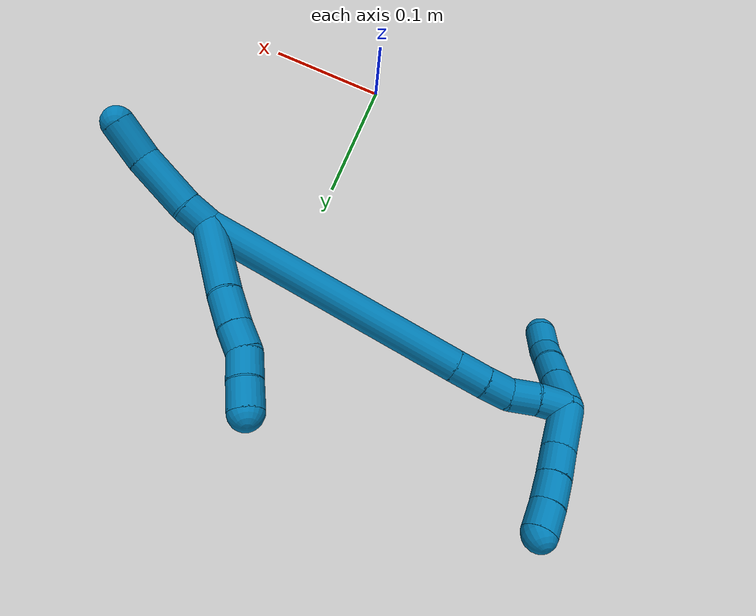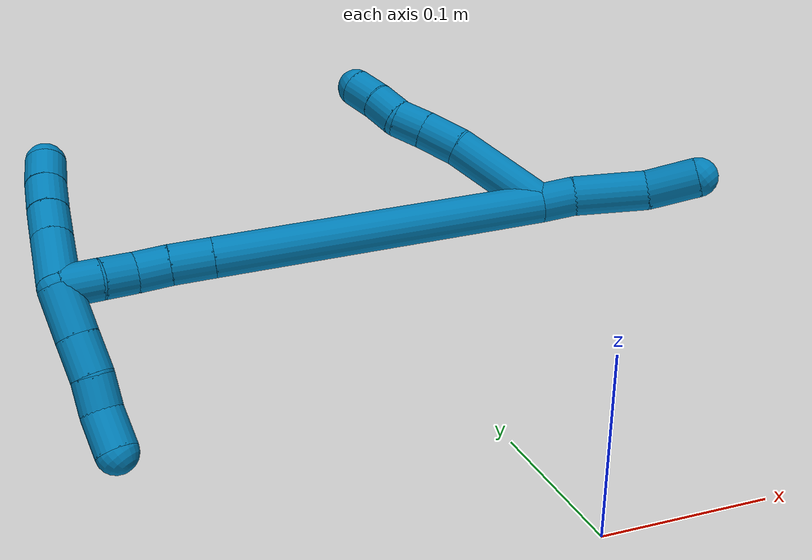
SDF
<sdf version="1.7">
 <world name="default">
  <model name="9">
   <static>0</static>
   <link name="9">
    <collision name="collision-cylinder-e_1_2_8">
     <pose>-0.000675 0.00747 0.031208 -0.234941 -0.02104 0.002483</pose>
     <geometry><cylinder><radius>0.0125</radius><length>0.064194</length></cylinder></geometry>
     <surface>
      <friction><ode><mu>1.16</mu><mu2>1.16</mu2><slip1>0</slip1><slip2>0</slip2></ode></friction>
      <contact><ode><kp>1e+06</kp><kd>1</kd><max_vel>0</max_vel><min_depth>0.001</min_depth></ode></contact>
     </surface>
    </collision>
    <visual name="visual-cylinder-e_1_2_8">
     <pose>-0.000675 0.00747 0.031208 -0.234941 -0.02104 0.002483</pose>
     <geometry><cylinder><radius>0.0125</radius><length>0.064194</length></cylinder></geometry>
     <material><ambient>0 0.490196 0.709804 1</ambient></material>
    </visual>
    <collision name="collision-cylinder-e_2_8_9">
     <pose>-0.001644 0.019581 0.074373 -0.370231 -0.022881 0.004285</pose>
     <geometry><cylinder><radius>0.0125</radius><length>0.025659</length></cylinder></geometry>
     <surface>
      <friction><ode><mu>1.16</mu><mu2>1.16</mu2><slip1>0</slip1><slip2>0</slip2></ode></friction>
      <contact><ode><kp>1e+06</kp><kd>1</kd><max_vel>0</max_vel><min_depth>0.001</min_depth></ode></contact>
     </surface>
    </collision>
    <visual name="visual-cylinder-e_2_8_9">
     <pose>-0.001644 0.019581 0.074373 -0.370231 -0.022881 0.004285</pose>
     <geometry><cylinder><radius>0.0125</radius><length>0.025659</length></cylinder></geometry>
     <material><ambient>0 0.490196 0.709804 1</ambient></material>
    </visual>
    <collision name="collision-cylinder-e_3_9_10">
     <pose>-0.002808 0.028211 0.095476 -0.411288 -0.086988 0.018156</pose>
     <geometry><cylinder><radius>0.0125</radius><length>0.020032</length></cylinder></geometry>
     <surface>
      <friction><ode><mu>1.16</mu><mu2>1.16</mu2><slip1>0</slip1><slip2>0</slip2></ode></friction>
      <contact><ode><kp>1e+06</kp><kd>1</kd><max_vel>0</max_vel><min_depth>0.001</min_depth></ode></contact>
     </surface>
    </collision>
    <visual name="visual-cylinder-e_3_9_10">
     <pose>-0.002808 0.028211 0.095476 -0.411288 -0.086988 0.018156</pose>
     <geometry><cylinder><radius>0.0125</radius><length>0.020032</length></cylinder></geometry>
     <material><ambient>0 0.490196 0.709804 1</ambient></material>
    </visual>
    <collision name="collision-cylinder-e_4_10_11">
     <pose>-0.001848 0.034299 0.114241 -0.2148 0.18377 -0.019868</pose>
     <geometry><cylinder><radius>0.0125</radius><length>0.020027</length></cylinder></geometry>
     <surface>
      <friction><ode><mu>1.16</mu><mu2>1.16</mu2><slip1>0</slip1><slip2>0</slip2></ode></friction>
      <contact><ode><kp>1e+06</kp><kd>1</kd><max_vel>0</max_vel><min_depth>0.001</min_depth></ode></contact>
     </surface>
    </collision>
    <visual name="visual-cylinder-e_4_10_11">
     <pose>-0.001848 0.034299 0.114241 -0.2148 0.18377 -0.019868</pose>
     <geometry><cylinder><radius>0.0125</radius><length>0.020027</length></cylinder></geometry>
     <material><ambient>0 0.490196 0.709804 1</ambient></material>
    </visual>
    <collision name="collision-cylinder-e_5_11_6">
     <pose>0.002055 0.03941 0.133215 -0.311565 0.207925 -0.032771</pose>
     <geometry><cylinder><radius>0.0125</radius><length>0.020088</length></cylinder></geometry>
     <surface>
      <friction><ode><mu>1.16</mu><mu2>1.16</mu2><slip1>0</slip1><slip2>0</slip2></ode></friction>
      <contact><ode><kp>1e+06</kp><kd>1</kd><max_vel>0</max_vel><min_depth>0.001</min_depth></ode></contact>
     </surface>
    </collision>
    <visual name="visual-cylinder-e_5_11_6">
     <pose>0.002055 0.03941 0.133215 -0.311565 0.207925 -0.032771</pose>
     <geometry><cylinder><radius>0.0125</radius><length>0.020088</length></cylinder></geometry>
     <material><ambient>0 0.490196 0.709804 1</ambient></material>
    </visual>
    <collision name="collision-cylinder-e_1_2_12">
     <pose>0.004268 -0.008736 -0.005165 2.10477 0.398045 0.679695</pose>
     <geometry><cylinder><radius>0.0125</radius><length>0.02202</length></cylinder></geometry>
     <surface>
      <friction><ode><mu>1.16</mu><mu2>1.16</mu2><slip1>0</slip1><slip2>0</slip2></ode></friction>
      <contact><ode><kp>1e+06</kp><kd>1</kd><max_vel>0</max_vel><min_depth>0.001</min_depth></ode></contact>
     </surface>
    </collision>
    <visual name="visual-cylinder-e_1_2_12">
     <pose>0.004268 -0.008736 -0.005165 2.10477 0.398045 0.679695</pose>
     <geometry><cylinder><radius>0.0125</radius><length>0.02202</length></cylinder></geometry>
     <material><ambient>0 0.490196 0.709804 1</ambient></material>
    </visual>
    <collision name="collision-cylinder-e_2_12_13">
     <pose>0.015208 -0.034793 -0.02397 2.23784 0.293914 0.592021</pose>
     <geometry><cylinder><radius>0.0125</radius><length>0.046069</length></cylinder></geometry>
     <surface>
      <friction><ode><mu>1.16</mu><mu2>1.16</mu2><slip1>0</slip1><slip2>0</slip2></ode></friction>
      <contact><ode><kp>1e+06</kp><kd>1</kd><max_vel>0</max_vel><min_depth>0.001</min_depth></ode></contact>
     </surface>
    </collision>
    <visual name="visual-cylinder-e_2_12_13">
     <pose>0.015208 -0.034793 -0.02397 2.23784 0.293914 0.592021</pose>
     <geometry><cylinder><radius>0.0125</radius><length>0.046069</length></cylinder></geometry>
     <material><ambient>0 0.490196 0.709804 1</ambient></material>
    </visual>
    <collision name="collision-cylinder-e_3_13_5">
     <pose>0.023951 -0.066115 -0.044977 2.0552 0.130115 0.214973</pose>
     <geometry><cylinder><radius>0.0125</radius><length>0.031912</length></cylinder></geometry>
     <surface>
      <friction><ode><mu>1.16</mu><mu2>1.16</mu2><slip1>0</slip1><slip2>0</slip2></ode></friction>
      <contact><ode><kp>1e+06</kp><kd>1</kd><max_vel>0</max_vel><min_depth>0.001</min_depth></ode></contact>
     </surface>
    </collision>
    <visual name="visual-cylinder-e_3_13_5">
     <pose>0.023951 -0.066115 -0.044977 2.0552 0.130115 0.214973</pose>
     <geometry><cylinder><radius>0.0125</radius><length>0.031912</length></cylinder></geometry>
     <material><ambient>0 0.490196 0.709804 1</ambient></material>
    </visual>
    <collision name="collision-cylinder-e_1_2_14">
     <pose>-0.059821 0.071014 0.047811 -0.97824 -0.609899 0.331992</pose>
     <geometry><cylinder><radius>0.0125</radius><length>0.208878</length></cylinder></geometry>
     <surface>
      <friction><ode><mu>1.16</mu><mu2>1.16</mu2><slip1>0</slip1><slip2>0</slip2></ode></friction>
      <contact><ode><kp>1e+06</kp><kd>1</kd><max_vel>0</max_vel><min_depth>0.001</min_depth></ode></contact>
     </surface>
    </collision>
    <visual name="visual-cylinder-e_1_2_14">
     <pose>-0.059821 0.071014 0.047811 -0.97824 -0.609899 0.331992</pose>
     <geometry><cylinder><radius>0.0125</radius><length>0.208878</length></cylinder></geometry>
     <material><ambient>0 0.490196 0.709804 1</ambient></material>
    </visual>
    <collision name="collision-cylinder-e_2_14_15">
     <pose>-0.127131 0.150779 0.10147 -0.981721 -0.618464 0.338258</pose>
     <geometry><cylinder><radius>0.0125</radius><length>0.025833</length></cylinder></geometry>
     <surface>
      <friction><ode><mu>1.16</mu><mu2>1.16</mu2><slip1>0</slip1><slip2>0</slip2></ode></friction>
      <contact><ode><kp>1e+06</kp><kd>1</kd><max_vel>0</max_vel><min_depth>0.001</min_depth></ode></contact>
     </surface>
    </collision>
    <visual name="visual-cylinder-e_2_14_15">
     <pose>-0.127131 0.150779 0.10147 -0.981721 -0.618464 0.338258</pose>
     <geometry><cylinder><radius>0.0125</radius><length>0.025833</length></cylinder></geometry>
     <material><ambient>0 0.490196 0.709804 1</ambient></material>
    </visual>
    <collision name="collision-cylinder-e_3_15_16">
     <pose>-0.140939 0.166775 0.111544 -1.04263 -0.645636 0.379612</pose>
     <geometry><cylinder><radius>0.0125</radius><length>0.021005</length></cylinder></geometry>
     <surface>
      <friction><ode><mu>1.16</mu><mu2>1.16</mu2><slip1>0</slip1><slip2>0</slip2></ode></friction>
      <contact><ode><kp>1e+06</kp><kd>1</kd><max_vel>0</max_vel><min_depth>0.001</min_depth></ode></contact>
     </surface>
    </collision>
    <visual name="visual-cylinder-e_3_15_16">
     <pose>-0.140939 0.166775 0.111544 -1.04263 -0.645636 0.379612</pose>
     <geometry><cylinder><radius>0.0125</radius><length>0.021005</length></cylinder></geometry>
     <material><ambient>0 0.490196 0.709804 1</ambient></material>
    </visual>
    <collision name="collision-cylinder-e_4_16_17">
     <pose>-0.156008 0.17894 0.119083 -0.978386 -0.975106 0.550242</pose>
     <geometry><cylinder><radius>0.0125</radius><length>0.021139</length></cylinder></geometry>
     <surface>
      <friction><ode><mu>1.16</mu><mu2>1.16</mu2><slip1>0</slip1><slip2>0</slip2></ode></friction>
      <contact><ode><kp>1e+06</kp><kd>1</kd><max_vel>0</max_vel><min_depth>0.001</min_depth></ode></contact>
     </surface>
    </collision>
    <visual name="visual-cylinder-e_4_16_17">
     <pose>-0.156008 0.17894 0.119083 -0.978386 -0.975106 0.550242</pose>
     <geometry><cylinder><radius>0.0125</radius><length>0.021139</length></cylinder></geometry>
     <material><ambient>0 0.490196 0.709804 1</ambient></material>
    </visual>
    <collision name="collision-cylinder-e_5_17_1">
     <pose>-0.173388 0.190359 0.12654 -1.00301 -0.841779 0.481331</pose>
     <geometry><cylinder><radius>0.0125</radius><length>0.023145</length></cylinder></geometry>
     <surface>
      <friction><ode><mu>1.16</mu><mu2>1.16</mu2><slip1>0</slip1><slip2>0</slip2></ode></friction>
      <contact><ode><kp>1e+06</kp><kd>1</kd><max_vel>0</max_vel><min_depth>0.001</min_depth></ode></contact>
     </surface>
    </collision>
    <visual name="visual-cylinder-e_5_17_1">
     <pose>-0.173388 0.190359 0.12654 -1.00301 -0.841779 0.481331</pose>
     <geometry><cylinder><radius>0.0125</radius><length>0.023145</length></cylinder></geometry>
     <material><ambient>0 0.490196 0.709804 1</ambient></material>
    </visual>
    <collision name="collision-cylinder-e_1_1_18">
     <pose>-0.183626 0.201195 0.115996 -2.85447 -0.104575 0.694735</pose>
     <geometry><cylinder><radius>0.0125</radius><length>0.030801</length></cylinder></geometry>
     <surface>
      <friction><ode><mu>1.16</mu><mu2>1.16</mu2><slip1>0</slip1><slip2>0</slip2></ode></friction>
      <contact><ode><kp>1e+06</kp><kd>1</kd><max_vel>0</max_vel><min_depth>0.001</min_depth></ode></contact>
     </surface>
    </collision>
    <visual name="visual-cylinder-e_1_1_18">
     <pose>-0.183626 0.201195 0.115996 -2.85447 -0.104575 0.694735</pose>
     <geometry><cylinder><radius>0.0125</radius><length>0.030801</length></cylinder></geometry>
     <material><ambient>0 0.490196 0.709804 1</ambient></material>
    </visual>
    <collision name="collision-cylinder-e_2_18_19">
     <pose>-0.186425 0.208828 0.089801 -2.86269 -0.099195 0.679845</pose>
     <geometry><cylinder><radius>0.0125</radius><length>0.024054</length></cylinder></geometry>
     <surface>
      <friction><ode><mu>1.16</mu><mu2>1.16</mu2><slip1>0</slip1><slip2>0</slip2></ode></friction>
      <contact><ode><kp>1e+06</kp><kd>1</kd><max_vel>0</max_vel><min_depth>0.001</min_depth></ode></contact>
     </surface>
    </collision>
    <visual name="visual-cylinder-e_2_18_19">
     <pose>-0.186425 0.208828 0.089801 -2.86269 -0.099195 0.679845</pose>
     <geometry><cylinder><radius>0.0125</radius><length>0.024054</length></cylinder></geometry>
     <material><ambient>0 0.490196 0.709804 1</ambient></material>
    </visual>
    <collision name="collision-cylinder-e_3_19_20">
     <pose>-0.188372 0.216371 0.069063 -2.7103 -0.074229 0.335831</pose>
     <geometry><cylinder><radius>0.0125</radius><length>0.020383</length></cylinder></geometry>
     <surface>
      <friction><ode><mu>1.16</mu><mu2>1.16</mu2><slip1>0</slip1><slip2>0</slip2></ode></friction>
      <contact><ode><kp>1e+06</kp><kd>1</kd><max_vel>0</max_vel><min_depth>0.001</min_depth></ode></contact>
     </surface>
    </collision>
    <visual name="visual-cylinder-e_3_19_20">
     <pose>-0.188372 0.216371 0.069063 -2.7103 -0.074229 0.335831</pose>
     <geometry><cylinder><radius>0.0125</radius><length>0.020383</length></cylinder></geometry>
     <material><ambient>0 0.490196 0.709804 1</ambient></material>
    </visual>
    <collision name="collision-cylinder-e_4_20_4">
     <pose>-0.191595 0.222921 0.047918 -2.95076 -0.200654 1.62129</pose>
     <geometry><cylinder><radius>0.0125</radius><length>0.024762</length></cylinder></geometry>
     <surface>
      <friction><ode><mu>1.16</mu><mu2>1.16</mu2><slip1>0</slip1><slip2>0</slip2></ode></friction>
      <contact><ode><kp>1e+06</kp><kd>1</kd><max_vel>0</max_vel><min_depth>0.001</min_depth></ode></contact>
     </surface>
    </collision>
    <visual name="visual-cylinder-e_4_20_4">
     <pose>-0.191595 0.222921 0.047918 -2.95076 -0.200654 1.62129</pose>
     <geometry><cylinder><radius>0.0125</radius><length>0.024762</length></cylinder></geometry>
     <material><ambient>0 0.490196 0.709804 1</ambient></material>
    </visual>
    <collision name="collision-cylinder-e_1_1_21">
     <pose>-0.172286 0.195723 0.146025 0.073841 0.564156 0.021409</pose>
     <geometry><cylinder><radius>0.0125</radius><length>0.036404</length></cylinder></geometry>
     <surface>
      <friction><ode><mu>1.16</mu><mu2>1.16</mu2><slip1>0</slip1><slip2>0</slip2></ode></friction>
      <contact><ode><kp>1e+06</kp><kd>1</kd><max_vel>0</max_vel><min_depth>0.001</min_depth></ode></contact>
     </surface>
    </collision>
    <visual name="visual-cylinder-e_1_1_21">
     <pose>-0.172286 0.195723 0.146025 0.073841 0.564156 0.021409</pose>
     <geometry><cylinder><radius>0.0125</radius><length>0.036404</length></cylinder></geometry>
     <material><ambient>0 0.490196 0.709804 1</ambient></material>
    </visual>
    <collision name="collision-cylinder-e_2_21_22">
     <pose>-0.156989 0.193395 0.170739 0.126607 0.532153 0.034548</pose>
     <geometry><cylinder><radius>0.0125</radius><length>0.021933</length></cylinder></geometry>
     <surface>
      <friction><ode><mu>1.16</mu><mu2>1.16</mu2><slip1>0</slip1><slip2>0</slip2></ode></friction>
      <contact><ode><kp>1e+06</kp><kd>1</kd><max_vel>0</max_vel><min_depth>0.001</min_depth></ode></contact>
     </surface>
    </collision>
    <visual name="visual-cylinder-e_2_21_22">
     <pose>-0.156989 0.193395 0.170739 0.126607 0.532153 0.034548</pose>
     <geometry><cylinder><radius>0.0125</radius><length>0.021933</length></cylinder></geometry>
     <material><ambient>0 0.490196 0.709804 1</ambient></material>
    </visual>
    <collision name="collision-cylinder-e_3_22_23">
     <pose>-0.145642 0.191103 0.188964 0.123561 0.575258 0.036596</pose>
     <geometry><cylinder><radius>0.0125</radius><length>0.021259</length></cylinder></geometry>
     <surface>
      <friction><ode><mu>1.16</mu><mu2>1.16</mu2><slip1>0</slip1><slip2>0</slip2></ode></friction>
      <contact><ode><kp>1e+06</kp><kd>1</kd><max_vel>0</max_vel><min_depth>0.001</min_depth></ode></contact>
     </surface>
    </collision>
    <visual name="visual-cylinder-e_3_22_23">
     <pose>-0.145642 0.191103 0.188964 0.123561 0.575258 0.036596</pose>
     <geometry><cylinder><radius>0.0125</radius><length>0.021259</length></cylinder></geometry>
     <material><ambient>0 0.490196 0.709804 1</ambient></material>
    </visual>
    <collision name="collision-cylinder-e_4_23_3">
     <pose>-0.133862 0.188699 0.205964 0.158685 0.628342 0.051659</pose>
     <geometry><cylinder><radius>0.0125</radius><length>0.020404</length></cylinder></geometry>
     <surface>
      <friction><ode><mu>1.16</mu><mu2>1.16</mu2><slip1>0</slip1><slip2>0</slip2></ode></friction>
      <contact><ode><kp>1e+06</kp><kd>1</kd><max_vel>0</max_vel><min_depth>0.001</min_depth></ode></contact>
     </surface>
    </collision>
    <visual name="visual-cylinder-e_4_23_3">
     <pose>-0.133862 0.188699 0.205964 0.158685 0.628342 0.051659</pose>
     <geometry><cylinder><radius>0.0125</radius><length>0.020404</length></cylinder></geometry>
     <material><ambient>0 0.490196 0.709804 1</ambient></material>
    </visual>
    <collision name="collision-sphere-3">
     <pose>-0.127865 0.187395 0.214114 0 -0 0</pose>
     <geometry><sphere><radius>0.0125</radius></sphere></geometry>
     <surface>
      <friction><ode><mu>1.16</mu><mu2>1.16</mu2><slip1>0</slip1><slip2>0</slip2></ode></friction>
      <contact><ode><kp>1e+06</kp><kd>1</kd><max_vel>0</max_vel><min_depth>0.001</min_depth></ode></contact>
     </surface>
    </collision>
    <visual name="visual-sphere-3">
     <pose>-0.127865 0.187395 0.214114 0 -0 0</pose>
     <geometry><sphere><radius>0.0125</radius></sphere></geometry>
     <material><ambient>0 0.490196 0.709804 1</ambient></material>
    </visual>
    <collision name="collision-sphere-23">
     <pose>-0.139859 0.190004 0.197814 0 -0 0</pose>
     <geometry><sphere><radius>0.0125</radius></sphere></geometry>
     <surface>
      <friction><ode><mu>1.16</mu><mu2>1.16</mu2><slip1>0</slip1><slip2>0</slip2></ode></friction>
      <contact><ode><kp>1e+06</kp><kd>1</kd><max_vel>0</max_vel><min_depth>0.001</min_depth></ode></contact>
     </surface>
    </collision>
    <visual name="visual-sphere-23">
     <pose>-0.139859 0.190004 0.197814 0 -0 0</pose>
     <geometry><sphere><radius>0.0125</radius></sphere></geometry>
     <material><ambient>0 0.490196 0.709804 1</ambient></material>
    </visual>
    <collision name="collision-sphere-22">
     <pose>-0.151425 0.192202 0.180113 0 -0 0</pose>
     <geometry><sphere><radius>0.0125</radius></sphere></geometry>
     <surface>
      <friction><ode><mu>1.16</mu><mu2>1.16</mu2><slip1>0</slip1><slip2>0</slip2></ode></friction>
      <contact><ode><kp>1e+06</kp><kd>1</kd><max_vel>0</max_vel><min_depth>0.001</min_depth></ode></contact>
     </surface>
    </collision>
    <visual name="visual-sphere-22">
     <pose>-0.151425 0.192202 0.180113 0 -0 0</pose>
     <geometry><sphere><radius>0.0125</radius></sphere></geometry>
     <material><ambient>0 0.490196 0.709804 1</ambient></material>
    </visual>
    <collision name="collision-sphere-21">
     <pose>-0.162553 0.194589 0.161364 0 -0 0</pose>
     <geometry><sphere><radius>0.0125</radius></sphere></geometry>
     <surface>
      <friction><ode><mu>1.16</mu><mu2>1.16</mu2><slip1>0</slip1><slip2>0</slip2></ode></friction>
      <contact><ode><kp>1e+06</kp><kd>1</kd><max_vel>0</max_vel><min_depth>0.001</min_depth></ode></contact>
     </surface>
    </collision>
    <visual name="visual-sphere-21">
     <pose>-0.162553 0.194589 0.161364 0 -0 0</pose>
     <geometry><sphere><radius>0.0125</radius></sphere></geometry>
     <material><ambient>0 0.490196 0.709804 1</ambient></material>
    </visual>
    <collision name="collision-sphere-4">
     <pose>-0.194063 0.225222 0.036005 0 -0 0</pose>
     <geometry><sphere><radius>0.0125</radius></sphere></geometry>
     <surface>
      <friction><ode><mu>1.16</mu><mu2>1.16</mu2><slip1>0</slip1><slip2>0</slip2></ode></friction>
      <contact><ode><kp>1e+06</kp><kd>1</kd><max_vel>0</max_vel><min_depth>0.001</min_depth></ode></contact>
     </surface>
    </collision>
    <visual name="visual-sphere-4">
     <pose>-0.194063 0.225222 0.036005 0 -0 0</pose>
     <geometry><sphere><radius>0.0125</radius></sphere></geometry>
     <material><ambient>0 0.490196 0.709804 1</ambient></material>
    </visual>
    <collision name="collision-sphere-20">
     <pose>-0.189128 0.22062 0.059831 0 -0 0</pose>
     <geometry><sphere><radius>0.0125</radius></sphere></geometry>
     <surface>
      <friction><ode><mu>1.16</mu><mu2>1.16</mu2><slip1>0</slip1><slip2>0</slip2></ode></friction>
      <contact><ode><kp>1e+06</kp><kd>1</kd><max_vel>0</max_vel><min_depth>0.001</min_depth></ode></contact>
     </surface>
    </collision>
    <visual name="visual-sphere-20">
     <pose>-0.189128 0.22062 0.059831 0 -0 0</pose>
     <geometry><sphere><radius>0.0125</radius></sphere></geometry>
     <material><ambient>0 0.490196 0.709804 1</ambient></material>
    </visual>
    <collision name="collision-sphere-6">
     <pose>0.004129 0.042422 0.142569 0 -0 0</pose>
     <geometry><sphere><radius>0.0125</radius></sphere></geometry>
     <surface>
      <friction><ode><mu>1.16</mu><mu2>1.16</mu2><slip1>0</slip1><slip2>0</slip2></ode></friction>
      <contact><ode><kp>1e+06</kp><kd>1</kd><max_vel>0</max_vel><min_depth>0.001</min_depth></ode></contact>
     </surface>
    </collision>
    <visual name="visual-sphere-6">
     <pose>0.004129 0.042422 0.142569 0 -0 0</pose>
     <geometry><sphere><radius>0.0125</radius></sphere></geometry>
     <material><ambient>0 0.490196 0.709804 1</ambient></material>
    </visual>
    <collision name="collision-sphere-11">
     <pose>-1.8e-05 0.036397 0.12386 0 -0 0</pose>
     <geometry><sphere><radius>0.0125</radius></sphere></geometry>
     <surface>
      <friction><ode><mu>1.16</mu><mu2>1.16</mu2><slip1>0</slip1><slip2>0</slip2></ode></friction>
      <contact><ode><kp>1e+06</kp><kd>1</kd><max_vel>0</max_vel><min_depth>0.001</min_depth></ode></contact>
     </surface>
    </collision>
    <visual name="visual-sphere-11">
     <pose>-1.8e-05 0.036397 0.12386 0 -0 0</pose>
     <geometry><sphere><radius>0.0125</radius></sphere></geometry>
     <material><ambient>0 0.490196 0.709804 1</ambient></material>
    </visual>
    <collision name="collision-sphere-10">
     <pose>-0.003678 0.0322 0.104622 0 -0 0</pose>
     <geometry><sphere><radius>0.0125</radius></sphere></geometry>
     <surface>
      <friction><ode><mu>1.16</mu><mu2>1.16</mu2><slip1>0</slip1><slip2>0</slip2></ode></friction>
      <contact><ode><kp>1e+06</kp><kd>1</kd><max_vel>0</max_vel><min_depth>0.001</min_depth></ode></contact>
     </surface>
    </collision>
    <visual name="visual-sphere-10">
     <pose>-0.003678 0.0322 0.104622 0 -0 0</pose>
     <geometry><sphere><radius>0.0125</radius></sphere></geometry>
     <material><ambient>0 0.490196 0.709804 1</ambient></material>
    </visual>
    <collision name="collision-sphere-9">
     <pose>-0.001938 0.024222 0.08633 0 -0 0</pose>
     <geometry><sphere><radius>0.0125</radius></sphere></geometry>
     <surface>
      <friction><ode><mu>1.16</mu><mu2>1.16</mu2><slip1>0</slip1><slip2>0</slip2></ode></friction>
      <contact><ode><kp>1e+06</kp><kd>1</kd><max_vel>0</max_vel><min_depth>0.001</min_depth></ode></contact>
     </surface>
    </collision>
    <visual name="visual-sphere-9">
     <pose>-0.001938 0.024222 0.08633 0 -0 0</pose>
     <geometry><sphere><radius>0.0125</radius></sphere></geometry>
     <material><ambient>0 0.490196 0.709804 1</ambient></material>
    </visual>
    <collision name="collision-sphere-2">
     <geometry><sphere><radius>0.0125</radius></sphere></geometry>
     <surface>
      <friction><ode><mu>1.16</mu><mu2>1.16</mu2><slip1>0</slip1><slip2>0</slip2></ode></friction>
      <contact><ode><kp>1e+06</kp><kd>1</kd><max_vel>0</max_vel><min_depth>0.001</min_depth></ode></contact>
     </surface>
    </collision>
    <visual name="visual-sphere-2">
     <geometry><sphere><radius>0.0125</radius></sphere></geometry>
     <material><ambient>0 0.490196 0.709804 1</ambient></material>
    </visual>
    <collision name="collision-sphere-19">
     <pose>-0.187616 0.212122 0.078296 0 -0 0</pose>
     <geometry><sphere><radius>0.0125</radius></sphere></geometry>
     <surface>
      <friction><ode><mu>1.16</mu><mu2>1.16</mu2><slip1>0</slip1><slip2>0</slip2></ode></friction>
      <contact><ode><kp>1e+06</kp><kd>1</kd><max_vel>0</max_vel><min_depth>0.001</min_depth></ode></contact>
     </surface>
    </collision>
    <visual name="visual-sphere-19">
     <pose>-0.187616 0.212122 0.078296 0 -0 0</pose>
     <geometry><sphere><radius>0.0125</radius></sphere></geometry>
     <material><ambient>0 0.490196 0.709804 1</ambient></material>
    </visual>
    <collision name="collision-sphere-8">
     <pose>-0.001351 0.01494 0.062416 0 -0 0</pose>
     <geometry><sphere><radius>0.0125</radius></sphere></geometry>
     <surface>
      <friction><ode><mu>1.16</mu><mu2>1.16</mu2><slip1>0</slip1><slip2>0</slip2></ode></friction>
      <contact><ode><kp>1e+06</kp><kd>1</kd><max_vel>0</max_vel><min_depth>0.001</min_depth></ode></contact>
     </surface>
    </collision>
    <visual name="visual-sphere-8">
     <pose>-0.001351 0.01494 0.062416 0 -0 0</pose>
     <geometry><sphere><radius>0.0125</radius></sphere></geometry>
     <material><ambient>0 0.490196 0.709804 1</ambient></material>
    </visual>
    <collision name="collision-sphere-12">
     <pose>0.008535 -0.017472 -0.010331 0 -0 0</pose>
     <geometry><sphere><radius>0.0125</radius></sphere></geometry>
     <surface>
      <friction><ode><mu>1.16</mu><mu2>1.16</mu2><slip1>0</slip1><slip2>0</slip2></ode></friction>
      <contact><ode><kp>1e+06</kp><kd>1</kd><max_vel>0</max_vel><min_depth>0.001</min_depth></ode></contact>
     </surface>
    </collision>
    <visual name="visual-sphere-12">
     <pose>0.008535 -0.017472 -0.010331 0 -0 0</pose>
     <geometry><sphere><radius>0.0125</radius></sphere></geometry>
     <material><ambient>0 0.490196 0.709804 1</ambient></material>
    </visual>
    <collision name="collision-sphere-13">
     <pose>0.021881 -0.052114 -0.03761 0 -0 0</pose>
     <geometry><sphere><radius>0.0125</radius></sphere></geometry>
     <surface>
      <friction><ode><mu>1.16</mu><mu2>1.16</mu2><slip1>0</slip1><slip2>0</slip2></ode></friction>
      <contact><ode><kp>1e+06</kp><kd>1</kd><max_vel>0</max_vel><min_depth>0.001</min_depth></ode></contact>
     </surface>
    </collision>
    <visual name="visual-sphere-13">
     <pose>0.021881 -0.052114 -0.03761 0 -0 0</pose>
     <geometry><sphere><radius>0.0125</radius></sphere></geometry>
     <material><ambient>0 0.490196 0.709804 1</ambient></material>
    </visual>
    <collision name="collision-sphere-5">
     <pose>0.026022 -0.080116 -0.052345 0 -0 0</pose>
     <geometry><sphere><radius>0.0125</radius></sphere></geometry>
     <surface>
      <friction><ode><mu>1.16</mu><mu2>1.16</mu2><slip1>0</slip1><slip2>0</slip2></ode></friction>
      <contact><ode><kp>1e+06</kp><kd>1</kd><max_vel>0</max_vel><min_depth>0.001</min_depth></ode></contact>
     </surface>
    </collision>
    <visual name="visual-sphere-5">
     <pose>0.026022 -0.080116 -0.052345 0 -0 0</pose>
     <geometry><sphere><radius>0.0125</radius></sphere></geometry>
     <material><ambient>0 0.490196 0.709804 1</ambient></material>
    </visual>
    <collision name="collision-sphere-14">
     <pose>-0.119642 0.142029 0.095623 0 -0 0</pose>
     <geometry><sphere><radius>0.0125</radius></sphere></geometry>
     <surface>
      <friction><ode><mu>1.16</mu><mu2>1.16</mu2><slip1>0</slip1><slip2>0</slip2></ode></friction>
      <contact><ode><kp>1e+06</kp><kd>1</kd><max_vel>0</max_vel><min_depth>0.001</min_depth></ode></contact>
     </surface>
    </collision>
    <visual name="visual-sphere-14">
     <pose>-0.119642 0.142029 0.095623 0 -0 0</pose>
     <geometry><sphere><radius>0.0125</radius></sphere></geometry>
     <material><ambient>0 0.490196 0.709804 1</ambient></material>
    </visual>
    <collision name="collision-sphere-15">
     <pose>-0.13462 0.159529 0.107317 0 -0 0</pose>
     <geometry><sphere><radius>0.0125</radius></sphere></geometry>
     <surface>
      <friction><ode><mu>1.16</mu><mu2>1.16</mu2><slip1>0</slip1><slip2>0</slip2></ode></friction>
      <contact><ode><kp>1e+06</kp><kd>1</kd><max_vel>0</max_vel><min_depth>0.001</min_depth></ode></contact>
     </surface>
    </collision>
    <visual name="visual-sphere-15">
     <pose>-0.13462 0.159529 0.107317 0 -0 0</pose>
     <geometry><sphere><radius>0.0125</radius></sphere></geometry>
     <material><ambient>0 0.490196 0.709804 1</ambient></material>
    </visual>
    <collision name="collision-sphere-16">
     <pose>-0.147259 0.17402 0.115772 0 -0 0</pose>
     <geometry><sphere><radius>0.0125</radius></sphere></geometry>
     <surface>
      <friction><ode><mu>1.16</mu><mu2>1.16</mu2><slip1>0</slip1><slip2>0</slip2></ode></friction>
      <contact><ode><kp>1e+06</kp><kd>1</kd><max_vel>0</max_vel><min_depth>0.001</min_depth></ode></contact>
     </surface>
    </collision>
    <visual name="visual-sphere-16">
     <pose>-0.147259 0.17402 0.115772 0 -0 0</pose>
     <geometry><sphere><radius>0.0125</radius></sphere></geometry>
     <material><ambient>0 0.490196 0.709804 1</ambient></material>
    </visual>
    <collision name="collision-sphere-17">
     <pose>-0.164757 0.183859 0.122394 0 -0 0</pose>
     <geometry><sphere><radius>0.0125</radius></sphere></geometry>
     <surface>
      <friction><ode><mu>1.16</mu><mu2>1.16</mu2><slip1>0</slip1><slip2>0</slip2></ode></friction>
      <contact><ode><kp>1e+06</kp><kd>1</kd><max_vel>0</max_vel><min_depth>0.001</min_depth></ode></contact>
     </surface>
    </collision>
    <visual name="visual-sphere-17">
     <pose>-0.164757 0.183859 0.122394 0 -0 0</pose>
     <geometry><sphere><radius>0.0125</radius></sphere></geometry>
     <material><ambient>0 0.490196 0.709804 1</ambient></material>
    </visual>
    <collision name="collision-sphere-1">
     <pose>-0.182019 0.196858 0.130685 0 -0 0</pose>
     <geometry><sphere><radius>0.0125</radius></sphere></geometry>
     <surface>
      <friction><ode><mu>1.16</mu><mu2>1.16</mu2><slip1>0</slip1><slip2>0</slip2></ode></friction>
      <contact><ode><kp>1e+06</kp><kd>1</kd><max_vel>0</max_vel><min_depth>0.001</min_depth></ode></contact>
     </surface>
    </collision>
    <visual name="visual-sphere-1">
     <pose>-0.182019 0.196858 0.130685 0 -0 0</pose>
     <geometry><sphere><radius>0.0125</radius></sphere></geometry>
     <material><ambient>0 0.490196 0.709804 1</ambient></material>
    </visual>
    <collision name="collision-sphere-18">
     <pose>-0.185234 0.205533 0.101307 0 -0 0</pose>
     <geometry><sphere><radius>0.0125</radius></sphere></geometry>
     <surface>
      <friction><ode><mu>1.16</mu><mu2>1.16</mu2><slip1>0</slip1><slip2>0</slip2></ode></friction>
      <contact><ode><kp>1e+06</kp><kd>1</kd><max_vel>0</max_vel><min_depth>0.001</min_depth></ode></contact>
     </surface>
    </collision>
    <visual name="visual-sphere-18">
     <pose>-0.185234 0.205533 0.101307 0 -0 0</pose>
     <geometry><sphere><radius>0.0125</radius></sphere></geometry>
     <material><ambient>0 0.490196 0.709804 1</ambient></material>
    </visual>
    <inertial>
     <pose>-0.078528 0.093294 0.072186 0 -0 0</pose>
     <mass>0.75</mass>
     <inertia>
      <ixx>0.000871</ixx>
      <ixy>0</ixy>
      <ixz>0</ixz>
      <iyy>0.000794</iyy>
      <iyz>0</iyz>
      <izz>-7.1e-05</izz>
     </inertia>
    </inertial>
   </link>
   <pose>0.057954 0.185904 0.116194 -0.838401 0.189431 0.827415</pose>
  </model>
 </world>
</sdf>
